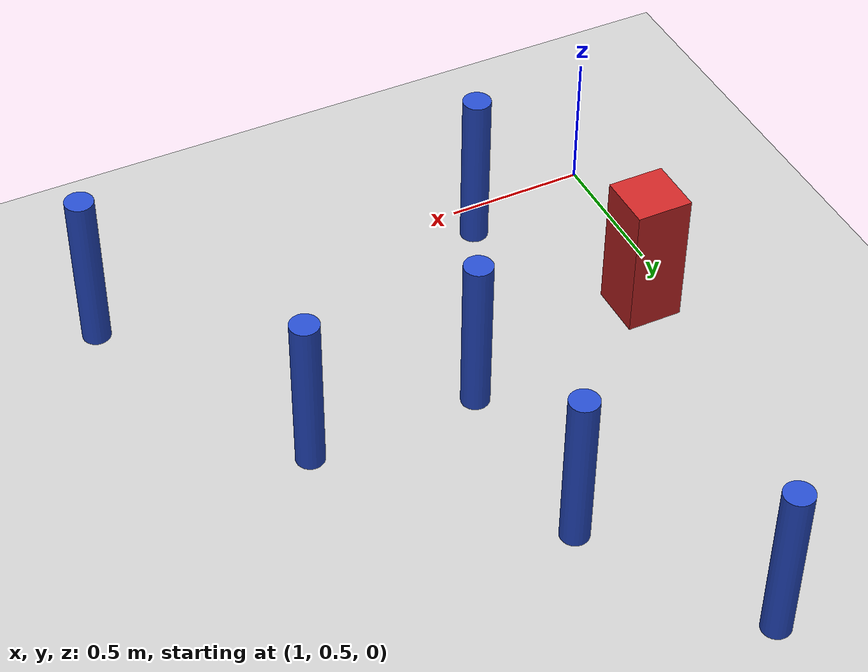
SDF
<sdf version="1.6">
 <world name="default">
  <model name="ground_plane">
   <static>1</static>
   <link name="link">
    <collision name="collision">
     <geometry><plane><normal>0 0 1</normal><size>100 100</size></plane></geometry>
     <surface><friction><ode><mu>100</mu><mu2>50</mu2></ode></friction></surface>
    </collision>
    <visual name="visual">
     <cast_shadows>0</cast_shadows>
     <geometry><plane><normal>0 0 1</normal><size>100 100</size></plane></geometry>
     <material>
      <ambient>1.0 1.0 1.0 1.0</ambient>
      <diffuse>0.8 0.8 0.8 1.0</diffuse>
      <specular>0.01 0.01 0.01 1.000000</specular>
     </material>
    </visual>
   </link>
  </model>
  <model name="pole_obstacle4">
   <static>true</static>
   <pose>1.47778483085 2.62779666062 2.88873142074e-08 -9.90536689791e-09 4.6021994899e-07 -1.20965994959e-07</pose>
   <link name="link">
    <pose>0 0 0.3 0 -0 0</pose>
    <inertial>
     <mass>1</mass>
     <inertia><ixx>0.145833</ixx><ixy>0</ixy><ixz>0</ixz><iyy>0.145833</iyy><iyz>0</iyz><izz>0.125</izz></inertia>
    </inertial>
    <collision name="collision">
     <geometry><cylinder><radius>0.05</radius><length>.6</length></cylinder></geometry>
    </collision>
    <visual name="visual">
     <geometry><cylinder><radius>0.05</radius><length>.6</length></cylinder></geometry>
     <material>
      <script><name>Gazebo/Blue</name><uri>file://media/materials/scripts/gazebo.material</uri></script>
     </material>
    </visual>
   </link>
  </model>
  <model name="pole_obstacle7">
   <static>true</static>
   <pose>1.85947096066 1.37539737807 2.88873142074e-08 -9.90536689672e-09 4.60219948993e-07 -1.20965994959e-07</pose>
   <link name="link">
    <pose>0 0 0.3 0 -0 0</pose>
    <inertial>
     <mass>1</mass>
     <inertia><ixx>0.145833</ixx><ixy>0</ixy><ixz>0</ixz><iyy>0.145833</iyy><iyz>0</iyz><izz>0.125</izz></inertia>
    </inertial>
    <collision name="collision">
     <geometry><cylinder><radius>0.05</radius><length>.6</length></cylinder></geometry>
    </collision>
    <visual name="visual">
     <geometry><cylinder><radius>0.05</radius><length>.6</length></cylinder></geometry>
     <material>
      <script><name>Gazebo/Blue</name><uri>file://media/materials/scripts/gazebo.material</uri></script>
     </material>
    </visual>
   </link>
  </model>
  <model name="pole_obstacle15">
   <static>true</static>
   <pose>1.48284990694 0.625660362326 2.88873142074e-08 -9.90536689692e-09 4.60219948993e-07 -1.20965994958e-07</pose>
   <link name="link">
    <pose>0 0 0.3 0 -0 0</pose>
    <inertial>
     <mass>1</mass>
     <inertia><ixx>0.145833</ixx><ixy>0</ixy><ixz>0</ixz><iyy>0.145833</iyy><iyz>0</iyz><izz>0.125</izz></inertia>
    </inertial>
    <collision name="collision">
     <geometry><cylinder><radius>0.05</radius><length>.6</length></cylinder></geometry>
    </collision>
    <visual name="visual">
     <geometry><cylinder><radius>0.05</radius><length>.6</length></cylinder></geometry>
     <material>
      <script><name>Gazebo/Blue</name><uri>file://media/materials/scripts/gazebo.material</uri></script>
     </material>
    </visual>
   </link>
  </model>
  <model name="pole_obstacle82">
   <static>true</static>
   <pose>2.88810577523 0.532815918404 2.88873142074e-08 -9.90536689404e-09 4.60219949e-07 -1.20965994955e-07</pose>
   <link name="link">
    <pose>0 0 0.3 0 -0 0</pose>
    <inertial>
     <mass>1</mass>
     <inertia><ixx>0.145833</ixx><ixy>0</ixy><ixz>0</ixz><iyy>0.145833</iyy><iyz>0</iyz><izz>0.125</izz></inertia>
    </inertial>
    <collision name="collision">
     <geometry><cylinder><radius>0.05</radius><length>.6</length></cylinder></geometry>
    </collision>
    <visual name="visual">
     <geometry><cylinder><radius>0.05</radius><length>.6</length></cylinder></geometry>
     <material>
      <script><name>Gazebo/Blue</name><uri>file://media/materials/scripts/gazebo.material</uri></script>
     </material>
    </visual>
   </link>
  </model>
  <model name="pole_obstacle83">
   <static>true</static>
   <pose>1.84749083711 2.039909047 2.88873142074e-08 -9.9053669019e-09 4.60219948981e-07 -1.20965994965e-07</pose>
   <link name="link">
    <pose>0 0 0.3 0 -0 0</pose>
    <inertial>
     <mass>1</mass>
     <inertia><ixx>0.145833</ixx><ixy>0</ixy><ixz>0</ixz><iyy>0.145833</iyy><iyz>0</iyz><izz>0.125</izz></inertia>
    </inertial>
    <collision name="collision">
     <geometry><cylinder><radius>0.05</radius><length>.6</length></cylinder></geometry>
    </collision>
    <visual name="visual">
     <geometry><cylinder><radius>0.05</radius><length>.6</length></cylinder></geometry>
     <material>
      <script><name>Gazebo/Blue</name><uri>file://media/materials/scripts/gazebo.material</uri></script>
     </material>
    </visual>
   </link>
  </model>
  <model name="pole_obstacle85">
   <static>true</static>
   <pose>2.46209064445 1.38160981831 2.88873142074e-08 -9.90536689395e-09 4.60219949e-07 -1.20965994953e-07</pose>
   <link name="link">
    <pose>0 0 0.3 0 -0 0</pose>
    <inertial>
     <mass>1</mass>
     <inertia><ixx>0.145833</ixx><ixy>0</ixy><ixz>0</ixz><iyy>0.145833</iyy><iyz>0</iyz><izz>0.125</izz></inertia>
    </inertial>
    <collision name="collision">
     <geometry><cylinder><radius>0.05</radius><length>.6</length></cylinder></geometry>
    </collision>
    <visual name="visual">
     <geometry><cylinder><radius>0.05</radius><length>.6</length></cylinder></geometry>
     <material>
      <script><name>Gazebo/Blue</name><uri>file://media/materials/scripts/gazebo.material</uri></script>
     </material>
    </visual>
   </link>
  </model>
  <model name="square_post_obstacle204">
   <static>true</static>
   <pose>1.13018322408 1.20956993979 8.22691968438e-08 7.2212513382e-06 -7.54495500217e-07 2.29674213826e-05</pose>
   <link name="link">
    <pose>0 0 0.25 0 -0 0</pose>
    <inertial>
     <mass>100</mass>
     <inertia>
      <ixx>0.166667</ixx>
      <ixy>0</ixy>
      <ixz>0</ixz>
      <iyy>0.166667</iyy>
      <iyz>0</iyz>
      <izz>0.166667</izz>
     </inertia>
    </inertial>
    <collision name="collision"><geometry><box><size>.2 .2 .5</size></box></geometry></collision>
    <visual name="visual">
     <geometry><box><size>.2 .2 .5</size></box></geometry>
     <material>
      <script><name>Gazebo/Red</name><uri>file://media/materials/scripts/gazebo.material</uri></script>
     </material>
    </visual>
   </link>
  </model>
 </world>
</sdf>
